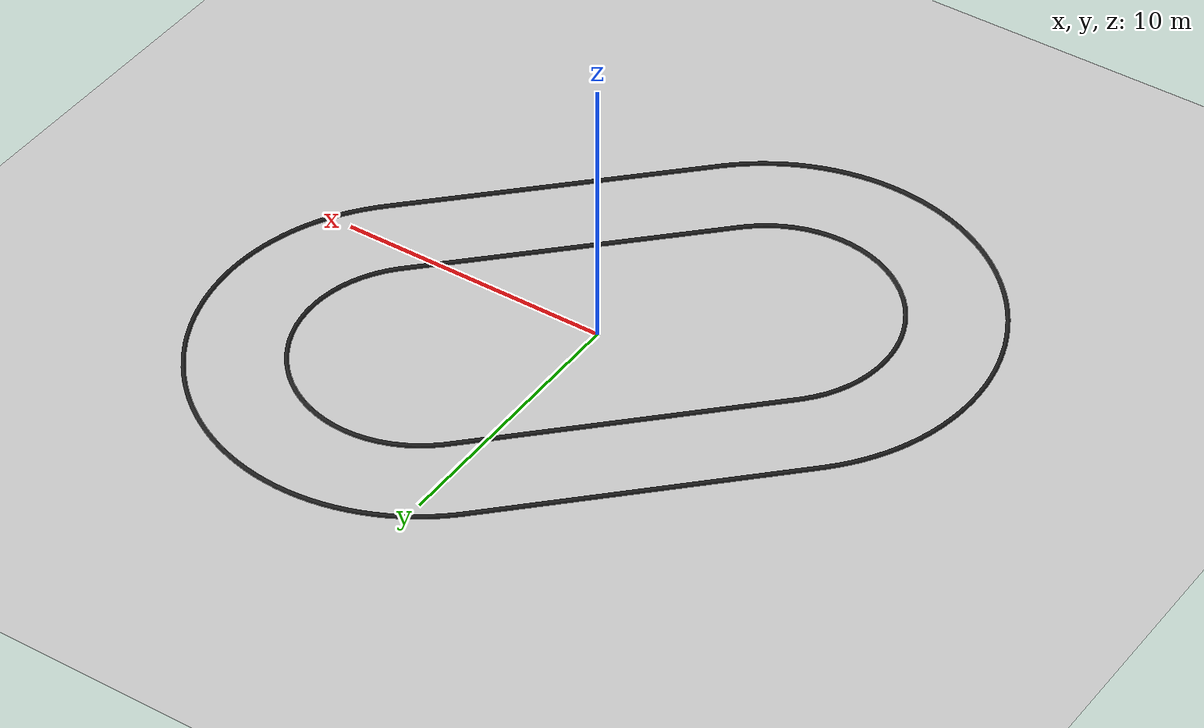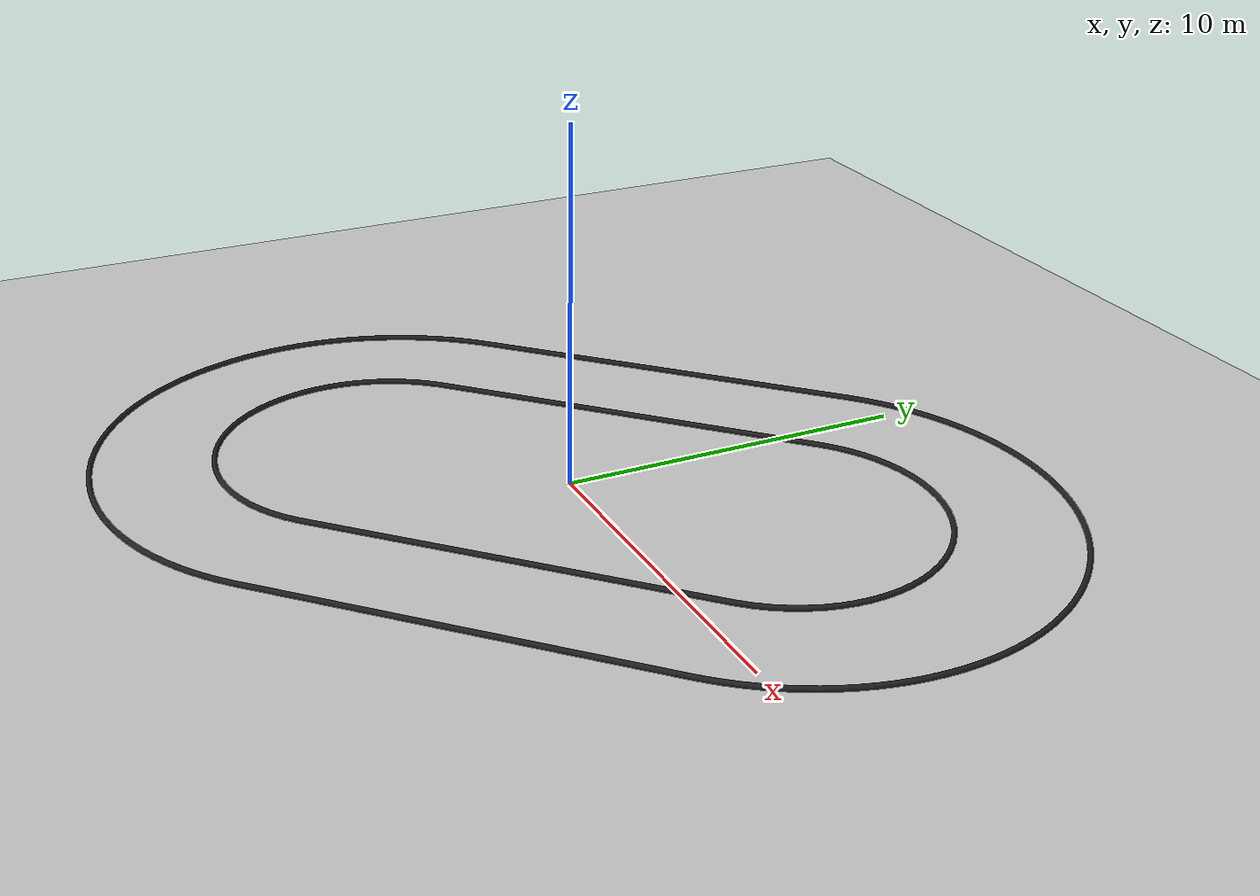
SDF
<?xml version="1.0" ?>
<sdf version="1.6">
  <world name="default">
    <scene>
      <sky>
        <clouds>
          <speed>12</speed>
        </clouds>
      </sky>
      <ambient>1.0 1.0 1.0 1.0</ambient>
      <shadows>true</shadows>
    </scene>

    <!-- A global light source -->
    <include>
      <uri>model://urdf/models/sun</uri>
    </include>
    <include>
      <name>track</name>
      <uri>model://urdf/models/track</uri>
      <pose>0 0 0.0762 0 0 0.785398</pose>
    </include>
    <!-- A ground plane -->
    <include>
      <name>blended_plane</name>
      <uri>model://urdf/models/blended_track</uri>
      <pose>0 0 0 0 0 0.785398</pose>
    </include>
  </world>
</sdf>

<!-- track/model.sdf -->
<sdf version="1.5">
  <model name="track">
    <static>true</static>
    <link name="link">
      <collision name="collision">
        <geometry>
          <mesh>
            <uri>model://urdf/cad/autoRallyTrack.dae</uri>
            <scale>1.0 1.0 1.0</scale>
          </mesh>
        </geometry>
        <surface>
          <friction>
            <ode>
              <mu>100</mu>
              <mu2>50</mu2>
            </ode>
          </friction>
        </surface>
      </collision>
      <visual name="visual">
        <cast_shadows>false</cast_shadows>
        <geometry>
          <mesh>
            <uri>model://urdf/cad/autoRallyTrack.dae</uri>
            <scale>1.0 1.0 1.0</scale>
          </mesh>
        </geometry>
        <material>
          <script>
            <uri>model://urdf/gazebo.material</uri>
            <name>Gazebo/Black</name>
          </script>
        </material>
      </visual>
    </link>
  </model>
</sdf>

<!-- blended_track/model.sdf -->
<sdf version="1.5">
  <model name="dirt_plane">
    <static>true</static>
    <link name="link">
      <collision name="collision">
        <geometry>
          <plane>
            <normal>0 0 1</normal>
            <size>90 90</size>
          </plane>
        </geometry>
        <laser_retro>0.0</laser_retro>
        <surface>
          <friction>
            <ode>
              <mu>100</mu>
              <mu2>50</mu2>
            </ode>
          </friction>
        </surface>
      </collision>
      <visual name="visual">
        <cast_shadows>false</cast_shadows>
        <geometry>
          <plane>
            <normal>0 0 1</normal>
            <size>90 90</size>
          </plane>
        </geometry>
        <laser_retro>0.0</laser_retro>
        <material>
          <script>
            <uri>model://urdf/gazebo.material</uri>
            <name>Gazebo/Texture_blend</name>
          </script>
        </material>
      </visual>
    </link>
  </model>
</sdf>
